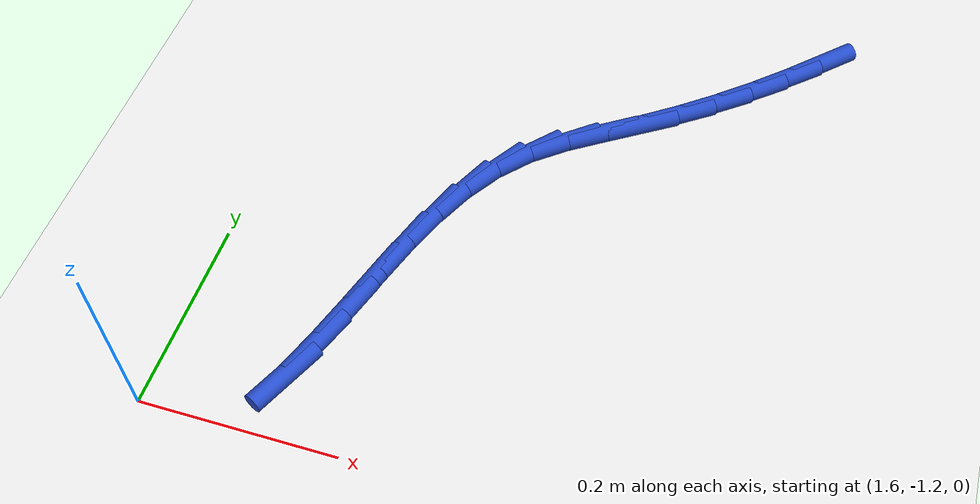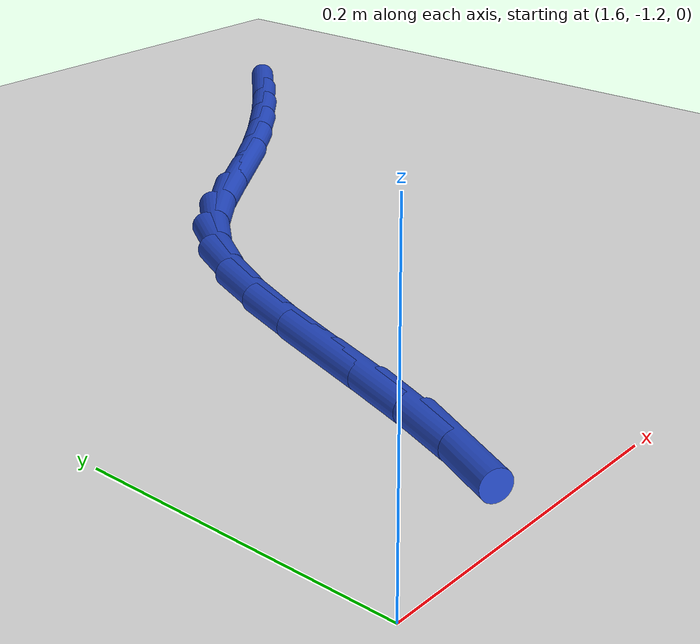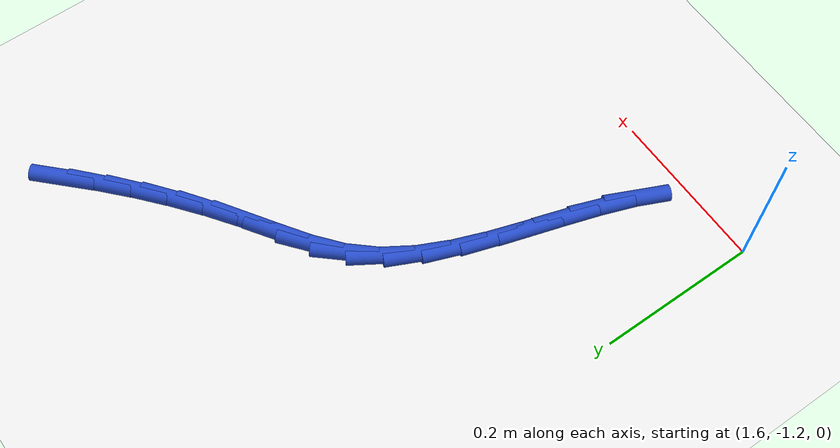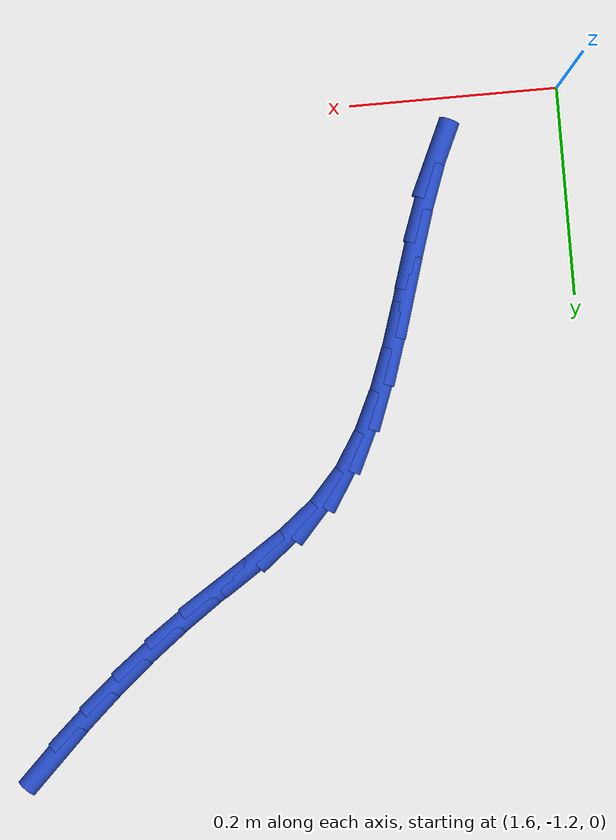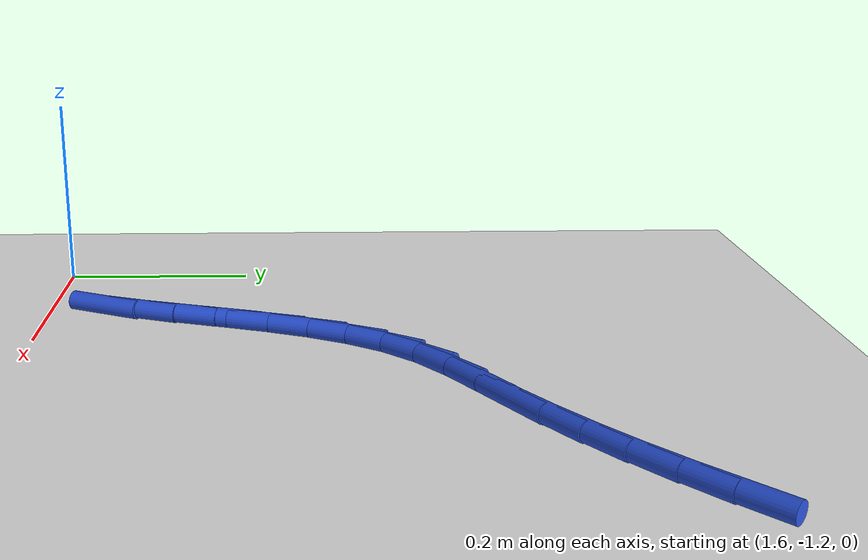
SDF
<sdf version="1.6">
 <world name="default">
  <model name="ground_plane">
   <static>1</static>
   <link name="link">
    <collision name="collision">
     <geometry><plane><normal>0 0 1</normal><size>100 100</size></plane></geometry>
     <surface><friction><ode><mu>100</mu><mu2>50</mu2></ode></friction></surface>
    </collision>
    <visual name="visual">
     <cast_shadows>0</cast_shadows>
     <geometry><plane><normal>0 0 1</normal><size>100 100</size></plane></geometry>
     <material>
      <script><uri>file://media/materials/scripts/gazebo.material</uri><name>Gazebo/WhiteGlow</name></script>
     </material>
    </visual>
   </link>
  </model>
  <model name="line">
   <link name="link_118">
    <pose>2.137812083251748 -0.6016402433306958 0.01 0 1.57 0.7808408899324684</pose>
    <collision name="collision">
     <geometry><cylinder><radius>0.01</radius><length>0.08</length></cylinder></geometry>
    </collision>
    <visual name="visual">
     <material>
      <script><name>Gazebo/Blue</name><uri>file://media/materials/scripts/gazebo.material</uri></script>
     </material>
     <geometry><cylinder><radius>0.01</radius><length>0.08</length></cylinder></geometry>
    </visual>
   </link>
   <link name="link_119">
    <pose>2.1055352235472897 -0.6336242466816926 0.01 0 1.57 0.7415800351777757</pose>
    <collision name="collision">
     <geometry><cylinder><radius>0.01</radius><length>0.08</length></cylinder></geometry>
    </collision>
    <visual name="visual">
     <material>
      <script><name>Gazebo/Blue</name><uri>file://media/materials/scripts/gazebo.material</uri></script>
     </material>
     <geometry><cylinder><radius>0.01</radius><length>0.08</length></cylinder></geometry>
    </visual>
   </link>
   <link name="link_120">
    <pose>2.072295746982789 -0.6640713108398013 0.01 0 1.57 0.70134335601474</pose>
    <collision name="collision">
     <geometry><cylinder><radius>0.01</radius><length>0.08</length></cylinder></geometry>
    </collision>
    <visual name="visual">
     <material>
      <script><name>Gazebo/Blue</name><uri>file://media/materials/scripts/gazebo.material</uri></script>
     </material>
     <geometry><cylinder><radius>0.01</radius><length>0.08</length></cylinder></geometry>
    </visual>
   </link>
   <link name="link_121">
    <pose>2.0381719698381637 -0.6928918224665266 0.01 0 1.57 0.659913988112757</pose>
    <collision name="collision">
     <geometry><cylinder><radius>0.01</radius><length>0.08</length></cylinder></geometry>
    </collision>
    <visual name="visual">
     <material>
      <script><name>Gazebo/Blue</name><uri>file://media/materials/scripts/gazebo.material</uri></script>
     </material>
     <geometry><cylinder><radius>0.01</radius><length>0.08</length></cylinder></geometry>
    </visual>
   </link>
   <link name="link_122">
    <pose>2.0032422083933366 -0.7199961682233741 0.01 0 1.57 0.6170663063202365</pose>
    <collision name="collision">
     <geometry><cylinder><radius>0.01</radius><length>0.08</length></cylinder></geometry>
    </collision>
    <visual name="visual">
     <material>
      <script><name>Gazebo/Blue</name><uri>file://media/materials/scripts/gazebo.material</uri></script>
     </material>
     <geometry><cylinder><radius>0.01</radius><length>0.08</length></cylinder></geometry>
    </visual>
   </link>
   <link name="link_123">
    <pose>1.9675847789282246 -0.7452947347718486 0.01 0 1.57 0.5780753388213348</pose>
    <collision name="collision">
     <geometry><cylinder><radius>0.01</radius><length>0.08</length></cylinder></geometry>
    </collision>
    <visual name="visual">
     <material>
      <script><name>Gazebo/Blue</name><uri>file://media/materials/scripts/gazebo.material</uri></script>
     </material>
     <geometry><cylinder><radius>0.01</radius><length>0.08</length></cylinder></geometry>
    </visual>
   </link>
   <link name="link_124">
    <pose>1.9314201865992384 -0.7688892777359598 0.01 0 1.57 0.5895317852295537</pose>
    <collision name="collision">
     <geometry><cylinder><radius>0.01</radius><length>0.08</length></cylinder></geometry>
    </collision>
    <visual name="visual">
     <material>
      <script><name>Gazebo/Blue</name><uri>file://media/materials/scripts/gazebo.material</uri></script>
     </material>
     <geometry><cylinder><radius>0.01</radius><length>0.08</length></cylinder></geometry>
    </visual>
   </link>
   <link name="link_125">
    <pose>1.8961547647143682 -0.7924775334428302 0.01 0 1.57 0.6780543904859486</pose>
    <collision name="collision">
     <geometry><cylinder><radius>0.01</radius><length>0.08</length></cylinder></geometry>
    </collision>
    <visual name="visual">
     <material>
      <script><name>Gazebo/Blue</name><uri>file://media/materials/scripts/gazebo.material</uri></script>
     </material>
     <geometry><cylinder><radius>0.01</radius><length>0.08</length></cylinder></geometry>
    </visual>
   </link>
   <link name="link_126">
    <pose>1.8637841630244885 -0.8185503865940907 0.01 0 1.57 0.841382714865095</pose>
    <collision name="collision">
     <geometry><cylinder><radius>0.01</radius><length>0.08</length></cylinder></geometry>
    </collision>
    <visual name="visual">
     <material>
      <script><name>Gazebo/Blue</name><uri>file://media/materials/scripts/gazebo.material</uri></script>
     </material>
     <geometry><cylinder><radius>0.01</radius><length>0.08</length></cylinder></geometry>
    </visual>
   </link>
   <link name="link_127">
    <pose>1.8361733867230439 -0.8494396895734253 0.01 0 1.57 1.0077241116848352</pose>
    <collision name="collision">
     <geometry><cylinder><radius>0.01</radius><length>0.08</length></cylinder></geometry>
    </collision>
    <visual name="visual">
     <material>
      <script><name>Gazebo/Blue</name><uri>file://media/materials/scripts/gazebo.material</uri></script>
     </material>
     <geometry><cylinder><radius>0.01</radius><length>0.08</length></cylinder></geometry>
    </visual>
   </link>
   <link name="link_128">
    <pose>1.8134794370832388 -0.8853912067894959 0.01 0 1.57 1.1299342266493368</pose>
    <collision name="collision">
     <geometry><cylinder><radius>0.01</radius><length>0.08</length></cylinder></geometry>
    </collision>
    <visual name="visual">
     <material>
      <script><name>Gazebo/Blue</name><uri>file://media/materials/scripts/gazebo.material</uri></script>
     </material>
     <geometry><cylinder><radius>0.01</radius><length>0.08</length></cylinder></geometry>
    </visual>
   </link>
   <link name="link_129">
    <pose>1.7946872411512094 -0.9252191778623254 0.01 0 1.57 1.212139855968473</pose>
    <collision name="collision">
     <geometry><cylinder><radius>0.01</radius><length>0.08</length></cylinder></geometry>
    </collision>
    <visual name="visual">
     <material>
      <script><name>Gazebo/Blue</name><uri>file://media/materials/scripts/gazebo.material</uri></script>
     </material>
     <geometry><cylinder><radius>0.01</radius><length>0.08</length></cylinder></geometry>
    </visual>
   </link>
   <link name="link_130">
    <pose>1.7787587840964192 -0.9677098221173197 0.01 0 1.57 1.2602248757667265</pose>
    <collision name="collision">
     <geometry><cylinder><radius>0.01</radius><length>0.08</length></cylinder></geometry>
    </collision>
    <visual name="visual">
     <material>
      <script><name>Gazebo/Blue</name><uri>file://media/materials/scripts/gazebo.material</uri></script>
     </material>
     <geometry><cylinder><radius>0.01</radius><length>0.08</length></cylinder></geometry>
    </visual>
   </link>
   <link name="link_131">
    <pose>1.7646560510883331 -1.0116493588798854 0.01 0 1.57 1.2780393397558176</pose>
    <collision name="collision">
     <geometry><cylinder><radius>0.01</radius><length>0.08</length></cylinder></geometry>
    </collision>
    <visual name="visual">
     <material>
      <script><name>Gazebo/Blue</name><uri>file://media/materials/scripts/gazebo.material</uri></script>
     </material>
     <geometry><cylinder><radius>0.01</radius><length>0.08</length></cylinder></geometry>
    </visual>
   </link>
   <link name="link_132">
    <pose>1.7513410272964147 -1.055824007475428 0.01 0 1.57 1.2665077378414562</pose>
    <collision name="collision">
     <geometry><cylinder><radius>0.01</radius><length>0.08</length></cylinder></geometry>
    </collision>
    <visual name="visual">
     <material>
      <script><name>Gazebo/Blue</name><uri>file://media/materials/scripts/gazebo.material</uri></script>
     </material>
     <geometry><cylinder><radius>0.01</radius><length>0.08</length></cylinder></geometry>
    </visual>
   </link>
   <link name="link_133">
    <pose>1.737775697890128 -1.099019987229354 0.01 0 1.57 1.223247711460015</pose>
    <collision name="collision">
     <geometry><cylinder><radius>0.01</radius><length>0.08</length></cylinder></geometry>
    </collision>
    <visual name="visual">
     <material>
      <script><name>Gazebo/Blue</name><uri>file://media/materials/scripts/gazebo.material</uri></script>
     </material>
     <geometry><cylinder><radius>0.01</radius><length>0.08</length></cylinder></geometry>
    </visual>
   </link>
   <link name="link_134">
    <pose>1.722922048038937 -1.14002351746707 0.01 0 1.57 1.1421800567665072</pose>
    <collision name="collision">
     <geometry><cylinder><radius>0.01</radius><length>0.08</length></cylinder></geometry>
    </collision>
    <visual name="visual">
     <material>
      <script><name>Gazebo/Blue</name><uri>file://media/materials/scripts/gazebo.material</uri></script>
     </material>
     <geometry><cylinder><radius>0.01</radius><length>0.08</length></cylinder></geometry>
    </visual>
   </link>
  </model>
 </world>
</sdf>
